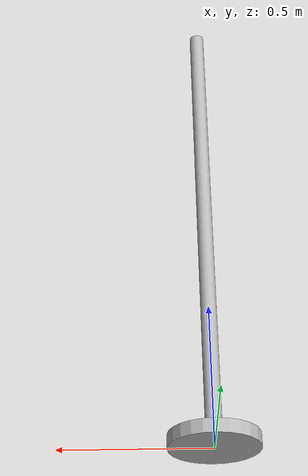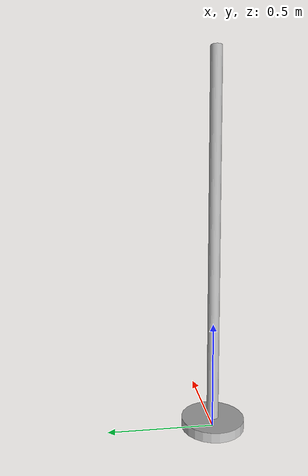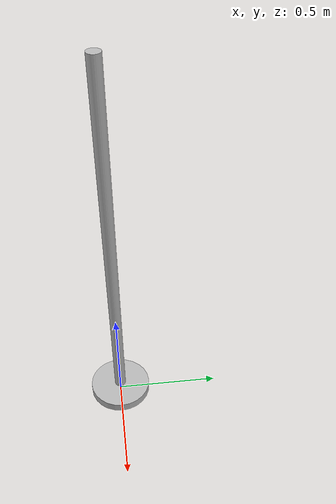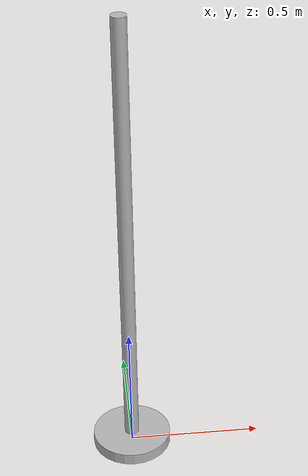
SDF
<?xml version="1.0" ?>
<sdf version="1.6">
  <model name="rwc2024/lamp">
    <static>true</static>
    <link name="1_link">
      <collision name="1_col">
        <geometry>
            <cylinder>
                <radius>0.15</radius>
                <length>0.045</length>
            </cylinder>
        </geometry>
      </collision>
      <visual name="1_vis">
        <geometry>
            <cylinder>
                <radius>0.15</radius>
                <length>0.045</length>
            </cylinder>
        </geometry>
      </visual>
      <pose>0.0 0.0 0.0225 0 0 0</pose>
    </link>
        <link name="2_link">
      <collision name="2_col">
        <geometry>
            <cylinder>
                <radius>0.0275</radius>
                <length>1.72</length>
            </cylinder>
        </geometry>
      </collision>
      <visual name="2_vis">
        <geometry>
            <cylinder>
                <radius>0.0275</radius>
                <length>1.72</length>
            </cylinder>
        </geometry>
      </visual>
      <pose>0.0 0.0 0.905 0 0 0</pose>
    </link>
  </model>
</sdf>
